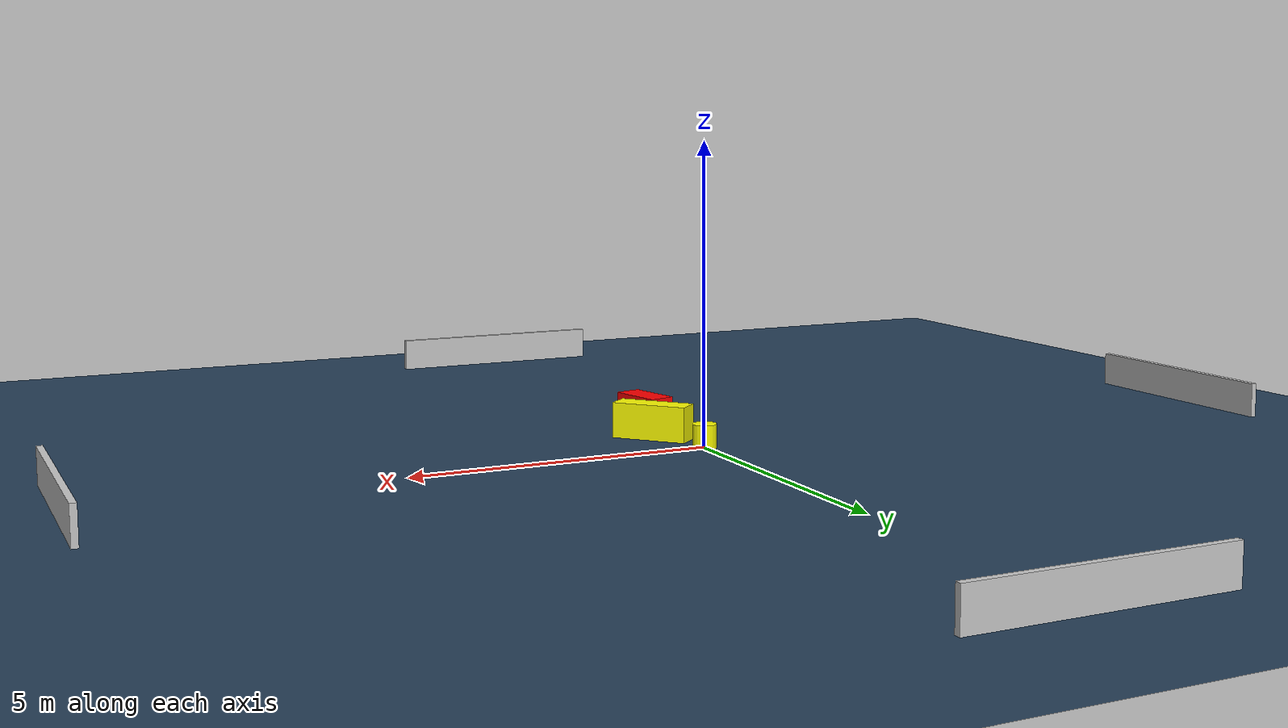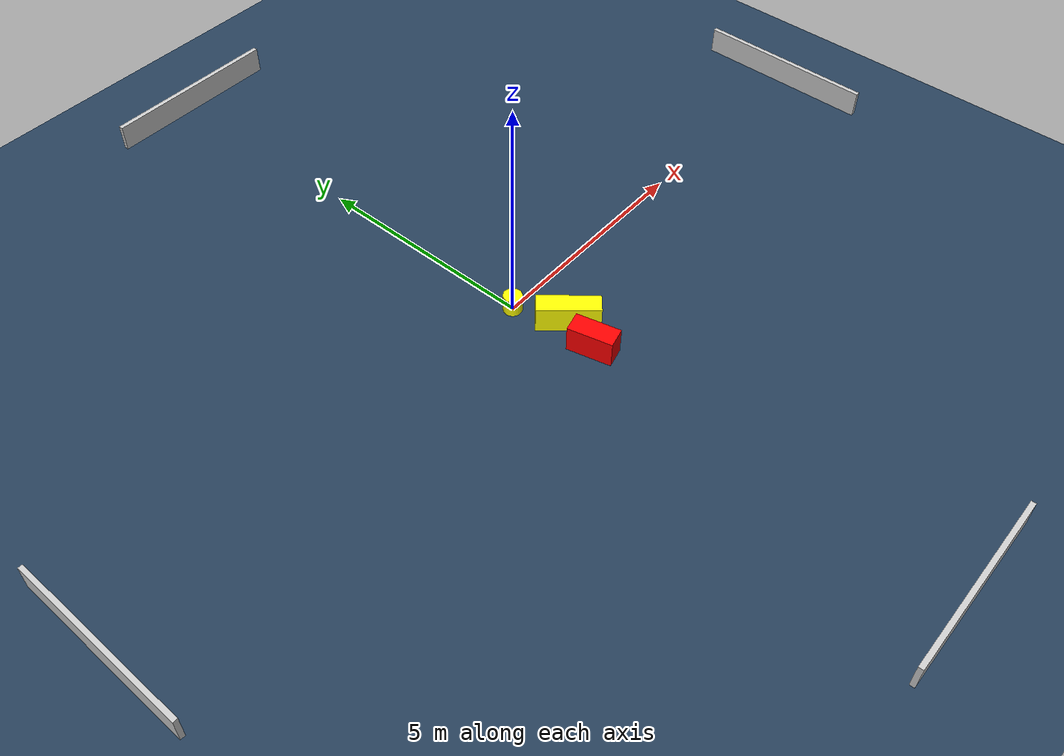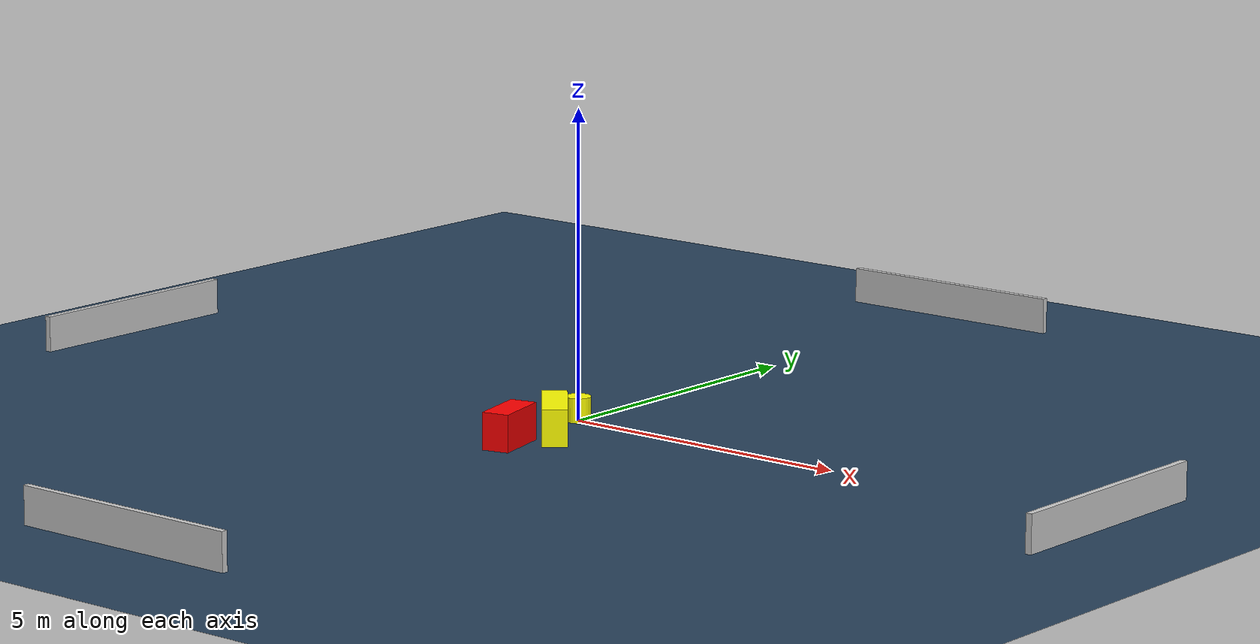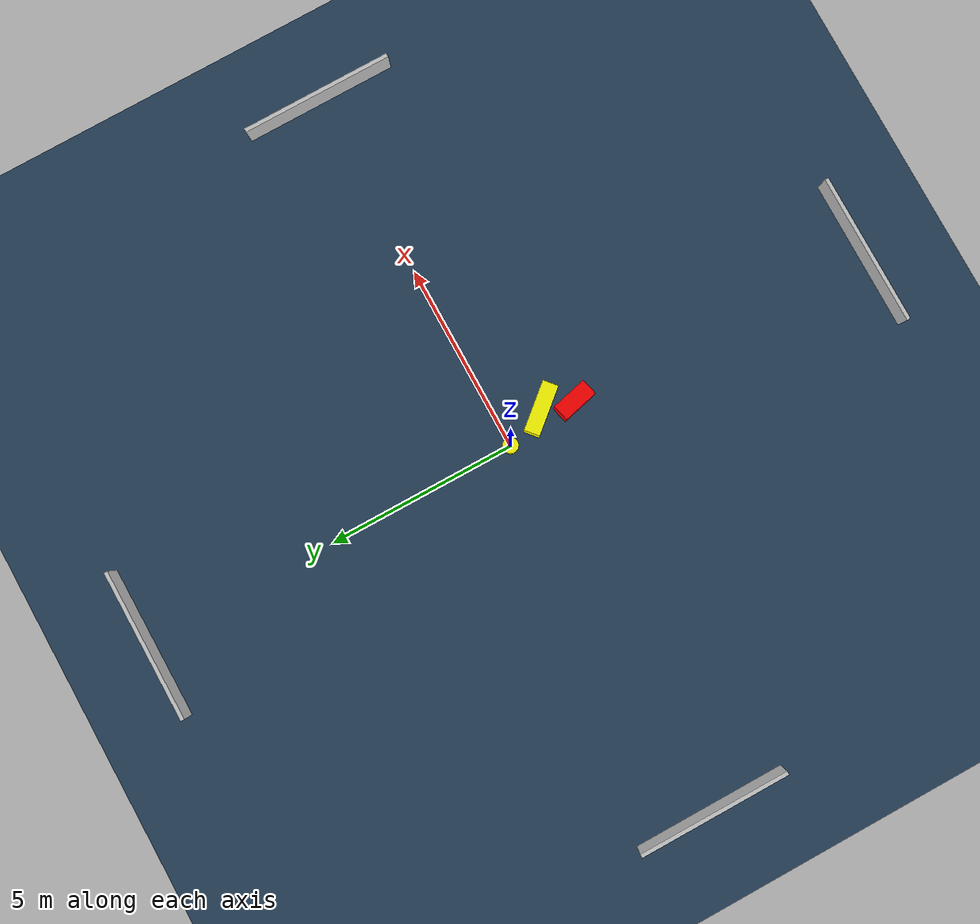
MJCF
<?xml version="1.0" ?>
<mujoco model="generated_environment">
  <option timestep="0.01" integrator="RK4" cone="elliptic"/>
  <default>
    <geom density="1"/>
  </default>
  <asset>
    <texture builtin="gradient" height="3072" name="skybox" rgb1="0.3 0.5 0.7" rgb2="0 0 0" type="skybox" width="512"/>
    <texture builtin="checker" height="300" name="groundplane" rgb1="0.2 0.3 0.4" rgb2="0.1 0.2 0.3" type="2d" width="300"/>
    <material name="groundplane" reflectance="0.2" texrepeat="5 5" texture="groundplane"/>
  </asset>
  <worldbody>
    <light dir="0 0 -1" directional="true" pos="0 0 1.5"/>
    <geom condim="3" friction="0.5 0.005 0.001" material="groundplane" name="floor" pos="0 0 0" size="0 0 0.05" type="plane"/>
    <body name="walls">
      <geom name="wall_1" condim="4" pos="-10.0 0.0 0.3" rgba="0.800000011920929 0.800000011920929 0.800000011920929 1.0" size="0.05 2.0 0.3" type="box"/>
      <geom name="wall_2" condim="4" pos="10.0 0.0 0.3" rgba="0.800000011920929 0.800000011920929 0.800000011920929 1.0" size="0.05 2.0 0.3" type="box"/>
      <geom name="wall_3" condim="4" pos="0.0 -10.0 0.3" rgba="0.800000011920929 0.800000011920929 0.800000011920929 1.0" size="2.0 0.05 0.3" type="box"/>
      <geom name="wall_4" condim="4" pos="0.0 10.0 0.3" rgba="0.800000011920929 0.800000011920929 0.800000011920929 1.0" size="2.0 0.05 0.3" type="box"/>
    </body>
    <body name="robot">
      <joint name="joint_x" type="slide" pos="0 0 0" axis="1 0 0"/>
      <joint name="joint_y" type="slide" pos="0 0 0" axis="0 1 0"/>
      <geom name="robot" type="cylinder" pos="0.0 0.0 0.2" size="0.2 0.2 0.0" mass="5.0" friction="1.0 0.005 0.0001" condim="4" rgba="1.0 1.0 0.0 1.0"/>
    </body>
    <body name="obstacle_1_movable">
      <geom name="obstacle_1_movable" condim="4" pos="0.423700510659975 -1.083822599673666 0.3" euler="0 0 130.56308087097392" friction="0.0 0.005 0.001" rgba="1.0 1.0 0.0 1.0" size="0.6544253938130566 0.20403853888647272 0.3" type="box" mass="0.1"/>
      <joint type="free"/>
    </body>
    <body name="obstacle_2_static">
      <geom name="obstacle_2_static" condim="4" pos="0.20160737893289898 -1.8944704750760206 0.3" euler="0 0 13.69268840628219" friction="0.0 0.005 0.001" rgba="1.0 0.0 0.0 1.0" size="0.21990044923018148 0.47985345683713326 0.3" type="box"/>
    </body>
  </worldbody>
  <actuator>
    <motor name="actuator_x" joint="joint_x" gear="1" ctrlrange="-1 1"/>
    <motor name="actuator_y" joint="joint_y" gear="1" ctrlrange="-1 1"/>
  </actuator>
</mujoco>
